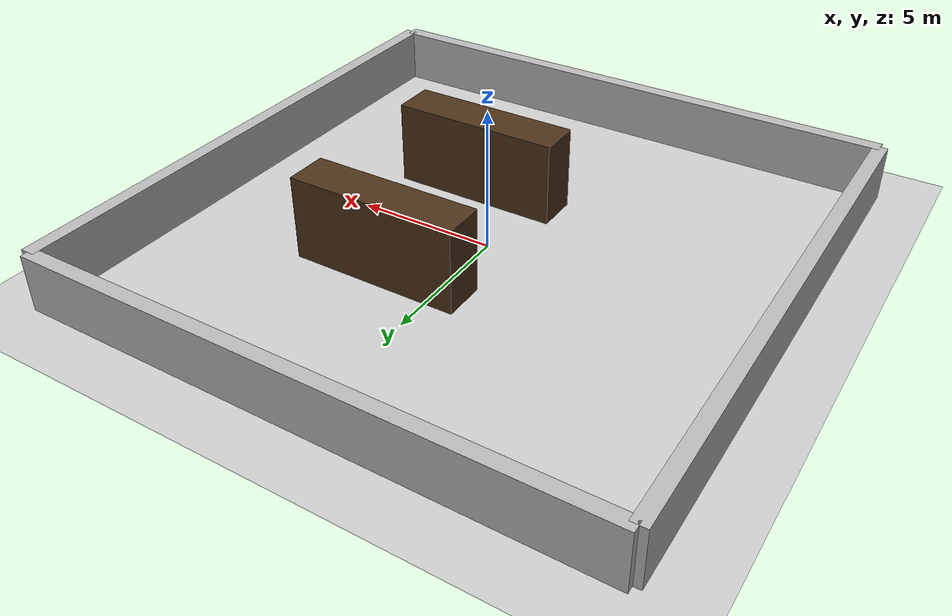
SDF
<?xml version="1.0" ?>
<sdf version="1.8">
  <world name="simple_warehouse">
    <physics name="1ms" type="ignored">
      <max_step_size>0.001</max_step_size>
      <real_time_factor>1.0</real_time_factor>
    </physics>
    <plugin filename="gz-sim-physics-system" name="gz::sim::systems::Physics"/>
    <plugin filename="gz-sim-user-commands-system" name="gz::sim::systems::UserCommands"/>
    <plugin filename="gz-sim-scene-broadcaster-system" name="gz::sim::systems::SceneBroadcaster"/>

    <light type="directional" name="sun">
      <cast_shadows>true</cast_shadows>
      <pose>0 0 10 0 0 0</pose>
      <diffuse>0.8 0.8 0.8 1</diffuse>
      <specular>0.2 0.2 0.2 1</specular>
      <direction>-0.5 0.1 -0.9</direction>
    </light>

    <model name="ground_plane">
      <static>true</static>
      <link name="link">
        <collision name="collision">
          <geometry><plane><normal>0 0 1</normal><size>100 100</size></plane></geometry>
        </collision>
        <visual name="visual">
          <geometry><plane><normal>0 0 1</normal><size>100 100</size></plane></geometry>
          <material><ambient>0.8 0.8 0.8 1</ambient><diffuse>0.8 0.8 0.8 1</diffuse></material>
        </visual>
      </link>
    </model>

    <model name="wall_1"><static>true</static><pose>0 10 1 0 0 0</pose><link name="link"><visual name="v"><geometry><box><size>20 0.5 2</size></box></geometry></visual><collision name="c"><geometry><box><size>20 0.5 2</size></box></geometry></collision></link></model>
    <model name="wall_2"><static>true</static><pose>0 -10 1 0 0 0</pose><link name="link"><visual name="v"><geometry><box><size>20 0.5 2</size></box></geometry></visual><collision name="c"><geometry><box><size>20 0.5 2</size></box></geometry></collision></link></model>
    <model name="wall_3"><static>true</static><pose>10 0 1 0 0 1.57</pose><link name="link"><visual name="v"><geometry><box><size>20 0.5 2</size></box></geometry></visual><collision name="c"><geometry><box><size>20 0.5 2</size></box></geometry></collision></link></model>
    <model name="wall_4"><static>true</static><pose>-10 0 1 0 0 1.57</pose><link name="link"><visual name="v"><geometry><box><size>20 0.5 2</size></box></geometry></visual><collision name="c"><geometry><box><size>20 0.5 2</size></box></geometry></collision></link></model>

    <model name="rack_1"><static>true</static><pose>2 3 1.5 0 0 0</pose><link name="link"><visual name="v"><geometry><box><size>6 1.5 3</size></box></geometry><material><ambient>0.3 0.2 0.1 1</ambient></material></visual><collision name="c"><geometry><box><size>6 1.5 3</size></box></geometry></collision></link></model>
    <model name="rack_2"><static>true</static><pose>2 -3 1.5 0 0 0</pose><link name="link"><visual name="v"><geometry><box><size>6 1.5 3</size></box></geometry><material><ambient>0.3 0.2 0.1 1</ambient></material></visual><collision name="c"><geometry><box><size>6 1.5 3</size></box></geometry></collision></link></model>

    <model name="red_cylinder">
      <static>true</static>
      <pose>7 0 0.5 0 0 0</pose> <link name="link">
        <collision name="collision">
          <geometry><cylinder><radius>0.4</radius><length>1.0</length></cylinder></geometry>
        </collision>
        <visual name="visual">
          <geometry><cylinder><radius>0.4</radius><length>1.0</length></cylinder></geometry>
          <material><ambient>1 0 0 1</ambient><diffuse>1 0 0 1</diffuse></material> </visual>
      </link>
    </model>

  </world>
</sdf>
